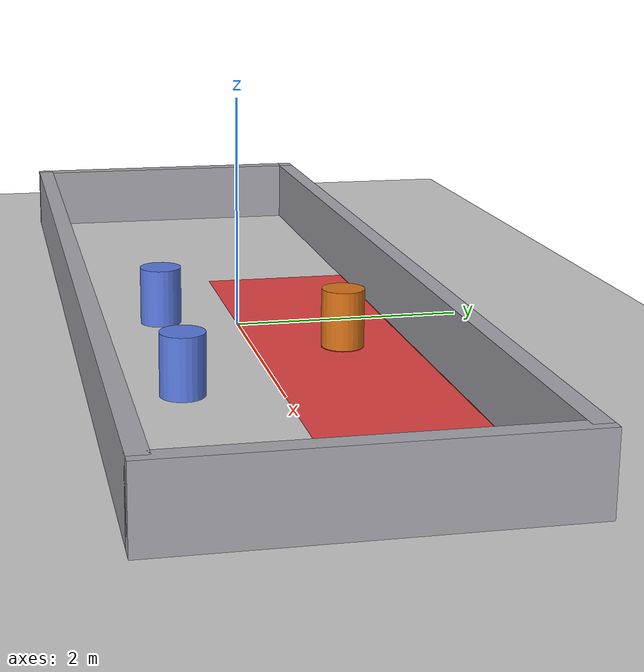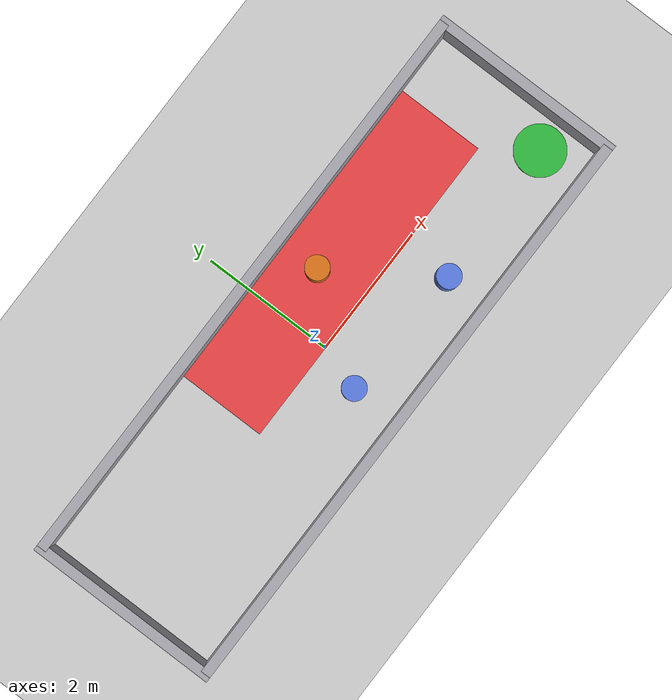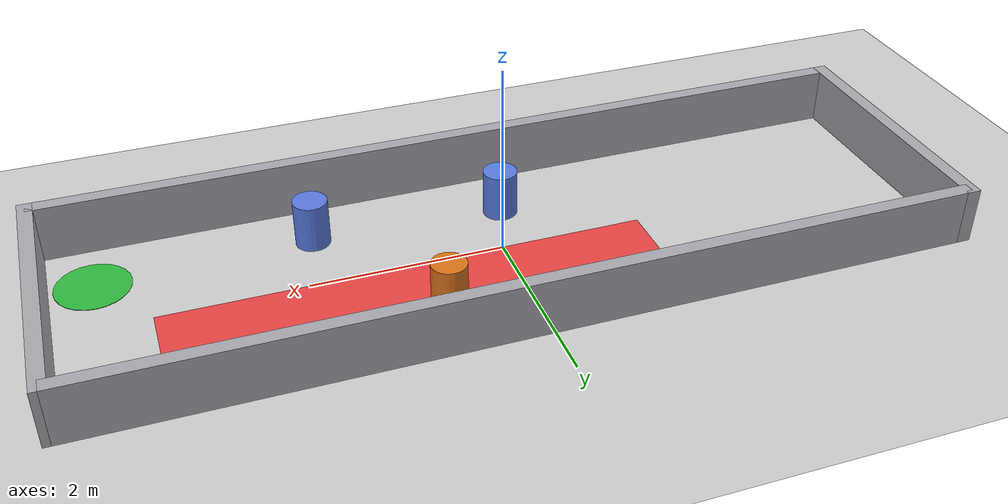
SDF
<?xml version="1.0"?>
<sdf version="1.6">
  <world name="default">

    <include>
      <uri>model://ground_plane</uri>
    </include>

    <include>
      <uri>model://sun</uri>
    </include>

    <scene>
      <shadows>false</shadows>
      <ambient>0.76 0.76 0.76 1.0</ambient>
      <background>0.95 0.95 0.94 1.0</background>
    </scene>

    <gui fullscreen='0'>
      <camera name='user_camera'>
        <pose frame=''>0.0 0.0 13.0 0 1.52 0</pose>
        <view_controller>orbit</view_controller>
        <projection_type>perspective</projection_type>
      </camera>
    </gui>

    <physics type="ode">
      <real_time_update_rate>0</real_time_update_rate>
      <max_step_size>0.001</max_step_size>
      <real_time_factor>0</real_time_factor>
      <ode>
        <solver>
          <type>quick</type>
          <iters>150</iters>
          <precon_iters>0</precon_iters>
          <sor>1.400000</sor>
          <use_dynamic_moi_rescaling>1</use_dynamic_moi_rescaling>
        </solver>
        <constraints>
          <cfm>0.00001</cfm>
          <erp>0.2</erp>
          <contact_max_correcting_vel>2000.000000</contact_max_correcting_vel>
          <contact_surface_layer>0.01000</contact_surface_layer>
        </constraints>
      </ode>
    </physics>

    <!-- Room: 9m x 2.8m corridor -->
    <model name='zone_corridor_narrow_layout'>
      <static>true</static>

      <link name='top_wall'>
        <pose>0 1.4 0 0 0 0</pose>
        <collision name='collision'>
          <pose>0 0 0.3 0 0 0</pose>
          <geometry><box><size>9.0 0.15 0.6</size></box></geometry>
        </collision>
        <visual name='visual'>
          <pose>0 0 0.3 0 0 0</pose>
          <geometry><box><size>9.0 0.15 0.6</size></box></geometry>
          <material>
            <ambient>0.65 0.65 0.68 1.0</ambient>
            <diffuse>0.65 0.65 0.68 1.0</diffuse>
          </material>
        </visual>
      </link>

      <link name='bottom_wall'>
        <pose>0 -1.4 0 0 0 0</pose>
        <collision name='collision'>
          <pose>0 0 0.3 0 0 0</pose>
          <geometry><box><size>9.0 0.15 0.6</size></box></geometry>
        </collision>
        <visual name='visual'>
          <pose>0 0 0.3 0 0 0</pose>
          <geometry><box><size>9.0 0.15 0.6</size></box></geometry>
          <material>
            <ambient>0.65 0.65 0.68 1.0</ambient>
            <diffuse>0.65 0.65 0.68 1.0</diffuse>
          </material>
        </visual>
      </link>

      <link name='left_wall'>
        <pose>-4.5 0 0 0 0 1.5708</pose>
        <collision name='collision'>
          <pose>0 0 0.3 0 0 0</pose>
          <geometry><box><size>2.95 0.15 0.6</size></box></geometry>
        </collision>
        <visual name='visual'>
          <pose>0 0 0.3 0 0 0</pose>
          <geometry><box><size>2.95 0.15 0.6</size></box></geometry>
          <material>
            <ambient>0.65 0.65 0.68 1.0</ambient>
            <diffuse>0.65 0.65 0.68 1.0</diffuse>
          </material>
        </visual>
      </link>

      <link name='right_wall'>
        <pose>4.5 0 0 0 0 1.5708</pose>
        <collision name='collision'>
          <pose>0 0 0.3 0 0 0</pose>
          <geometry><box><size>2.95 0.15 0.6</size></box></geometry>
        </collision>
        <visual name='visual'>
          <pose>0 0 0.3 0 0 0</pose>
          <geometry><box><size>2.95 0.15 0.6</size></box></geometry>
          <material>
            <ambient>0.65 0.65 0.68 1.0</ambient>
            <diffuse>0.65 0.65 0.68 1.0</diffuse>
          </material>
        </visual>
      </link>
    </model>

    <model name='goal_marker'>
      <static>true</static>
      <pose>4.0 -0.7 0 0 0 0</pose>
      <link name='marker'>
        <visual name='pad_visual'>
          <pose>0 0 0.003 0 0 0</pose>
          <geometry>
            <cylinder><radius>0.38</radius><length>0.006</length></cylinder>
          </geometry>
          <material>
            <ambient>0.18 0.72 0.24 1.0</ambient>
            <diffuse>0.18 0.72 0.24 1.0</diffuse>
          </material>
        </visual>
      </link>
    </model>

    <model name='barrel_zone_upper'>
      <static>true</static>
      <pose>0.8 0.75 0 0 0 0</pose>
      <link name='body'>
        <collision name='collision'>
          <pose>0 0 0.25 0 0 0</pose>
          <geometry>
            <cylinder><radius>0.18</radius><length>0.50</length></cylinder>
          </geometry>
        </collision>
        <visual name='visual'>
          <pose>0 0 0.25 0 0 0</pose>
          <geometry>
            <cylinder><radius>0.18</radius><length>0.50</length></cylinder>
          </geometry>
          <material>
            <ambient>0.85 0.45 0.10 1.0</ambient>
            <diffuse>0.85 0.45 0.10 1.0</diffuse>
          </material>
        </visual>
      </link>
    </model>

    <model name='barrel_lower_left'>
      <static>true</static>
      <pose>-0.2 -0.65 0 0 0 0</pose>
      <link name='body'>
        <collision name='collision'>
          <pose>0 0 0.25 0 0 0</pose>
          <geometry>
            <cylinder><radius>0.18</radius><length>0.50</length></cylinder>
          </geometry>
        </collision>
        <visual name='visual'>
          <pose>0 0 0.25 0 0 0</pose>
          <geometry>
            <cylinder><radius>0.18</radius><length>0.50</length></cylinder>
          </geometry>
          <material>
            <ambient>0.35 0.48 0.88 1.0</ambient>
            <diffuse>0.35 0.48 0.88 1.0</diffuse>
          </material>
        </visual>
      </link>
    </model>

    <model name='barrel_lower_right'>
      <static>true</static>
      <pose>1.8 -0.75 0 0 0 0</pose>
      <link name='body'>
        <collision name='collision'>
          <pose>0 0 0.25 0 0 0</pose>
          <geometry>
            <cylinder><radius>0.18</radius><length>0.50</length></cylinder>
          </geometry>
        </collision>
        <visual name='visual'>
          <pose>0 0 0.25 0 0 0</pose>
          <geometry>
            <cylinder><radius>0.18</radius><length>0.50</length></cylinder>
          </geometry>
          <material>
            <ambient>0.35 0.48 0.88 1.0</ambient>
            <diffuse>0.35 0.48 0.88 1.0</diffuse>
          </material>
        </visual>
      </link>
    </model>

    <model name='danger_zone_marker'>
      <static>true</static>
      <pose>1.0 0.7 0 0 0 0</pose>
      <link name='zone'>
        <visual name='zone_visual'>
          <pose>0 0 0.003 0 0 0</pose>
          <geometry>
            <box><size>5.0 1.4 0.006</size></box>
          </geometry>
          <transparency>0.28</transparency>
          <material>
            <ambient>1.0 0.10 0.10 1.0</ambient>
            <diffuse>1.0 0.10 0.10 1.0</diffuse>
          </material>
        </visual>
      </link>
    </model>

  </world>
</sdf>
